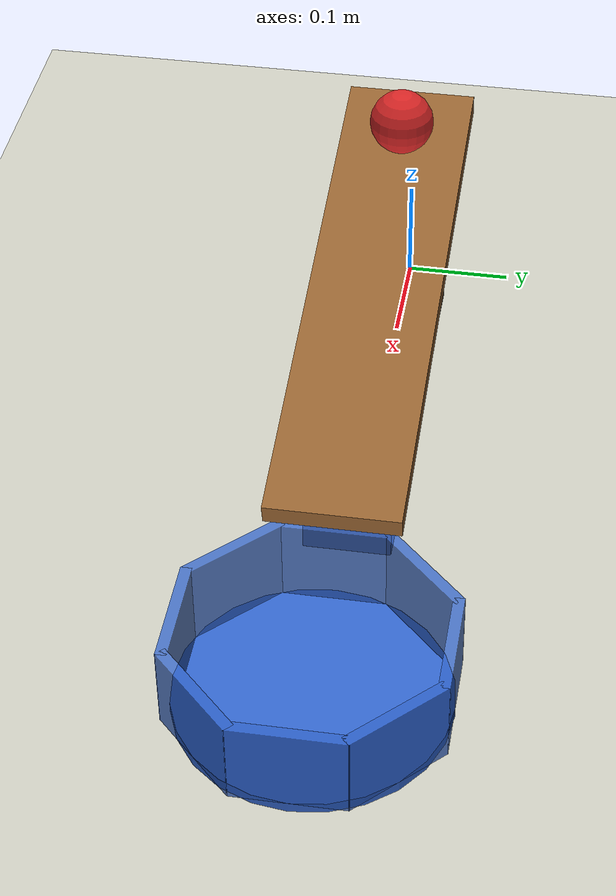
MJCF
<mujoco model="ball_ramp_cup">
  <option timestep="0.002" gravity="0 0 -9.81"/>

  <visual>
    <global offwidth="1280" offheight="720"/>
  </visual>

  <worldbody>
    <light name="sun" pos="0.3 -0.5 1.5" dir="0 0.3 -1" directional="true"/>
    <geom name="floor" type="plane" size="2 2 0.1" rgba="0.8 0.8 0.75 1"/>

    <!-- Ramp: 0.5 m long, tilted 12 deg, descending toward +x; lower top edge at (0.5, 0.12) -->
    <body name="ramp_body" pos="0 0 0">
      <geom name="ramp_board" type="box" pos="0.25338 0 0.16220" euler="0 12 0" size="0.25 0.06 0.01" rgba="0.6 0.4 0.2 1"/>
      <geom name="ramp_post_high" type="box" pos="0.06 0 0.095" size="0.02 0.04 0.095" rgba="0.4 0.3 0.2 1"/>
      <geom name="ramp_post_low" type="box" pos="0.40 0 0.06" size="0.02 0.04 0.06" rgba="0.4 0.3 0.2 1"/>
    </body>

    <!-- Cup: octagonal, inner apothem 0.11 m, rim at z = 0.09, fixed to the world -->
    <body name="cup" pos="0.6 0 0">
      <geom name="cup_bottom" type="cylinder" pos="0 0 0.005" size="0.12 0.005" rgba="0.2 0.4 0.8 1"/>
      <geom name="cup_wall_0" type="box" pos="0.115 0 0.05" euler="0 0 0" size="0.005 0.05 0.04" rgba="0.2 0.4 0.8 0.8"/>
      <geom name="cup_wall_45" type="box" pos="0.08132 0.08132 0.05" euler="0 0 45" size="0.005 0.05 0.04" rgba="0.2 0.4 0.8 0.8"/>
      <geom name="cup_wall_90" type="box" pos="0 0.115 0.05" euler="0 0 90" size="0.005 0.05 0.04" rgba="0.2 0.4 0.8 0.8"/>
      <geom name="cup_wall_135" type="box" pos="-0.08132 0.08132 0.05" euler="0 0 135" size="0.005 0.05 0.04" rgba="0.2 0.4 0.8 0.8"/>
      <geom name="cup_wall_180" type="box" pos="-0.115 0 0.05" euler="0 0 180" size="0.005 0.05 0.04" rgba="0.2 0.4 0.8 0.8"/>
      <geom name="cup_wall_225" type="box" pos="-0.08132 -0.08132 0.05" euler="0 0 225" size="0.005 0.05 0.04" rgba="0.2 0.4 0.8 0.8"/>
      <geom name="cup_wall_270" type="box" pos="0 -0.115 0.05" euler="0 0 270" size="0.005 0.05 0.04" rgba="0.2 0.4 0.8 0.8"/>
      <geom name="cup_wall_315" type="box" pos="0.08132 -0.08132 0.05" euler="0 0 315" size="0.005 0.05 0.04" rgba="0.2 0.4 0.8 0.8"/>
    </body>

    <!-- Ball: radius 3 cm, resting on the ramp surface near its upper end -->
    <body name="ball" pos="0.08563 0 0.2390">
      <freejoint name="ball_free"/>
      <geom name="ball" type="sphere" size="0.03" density="1000" condim="6" friction="0.8 0.005 0.002" rgba="0.85 0.15 0.15 1"/>
    </body>
  </worldbody>

  <keyframe>
    <key name="start" qpos="0.08563 0 0.2390 1 0 0 0" qvel="0 0 0 0 0 0"/>
  </keyframe>
</mujoco>
